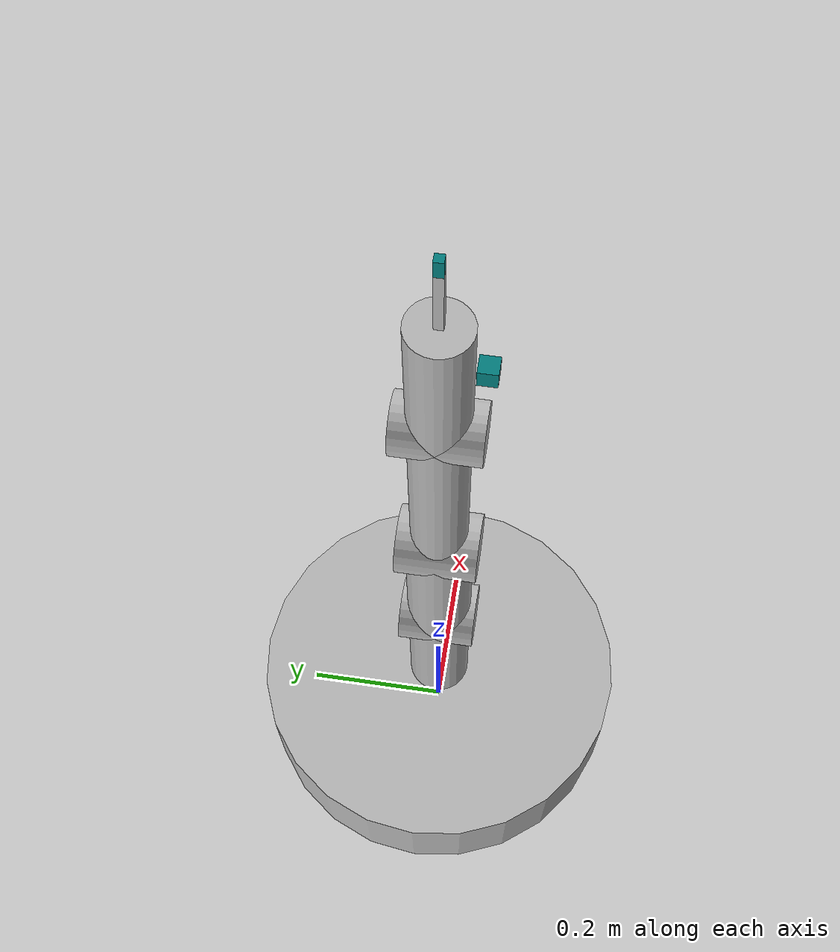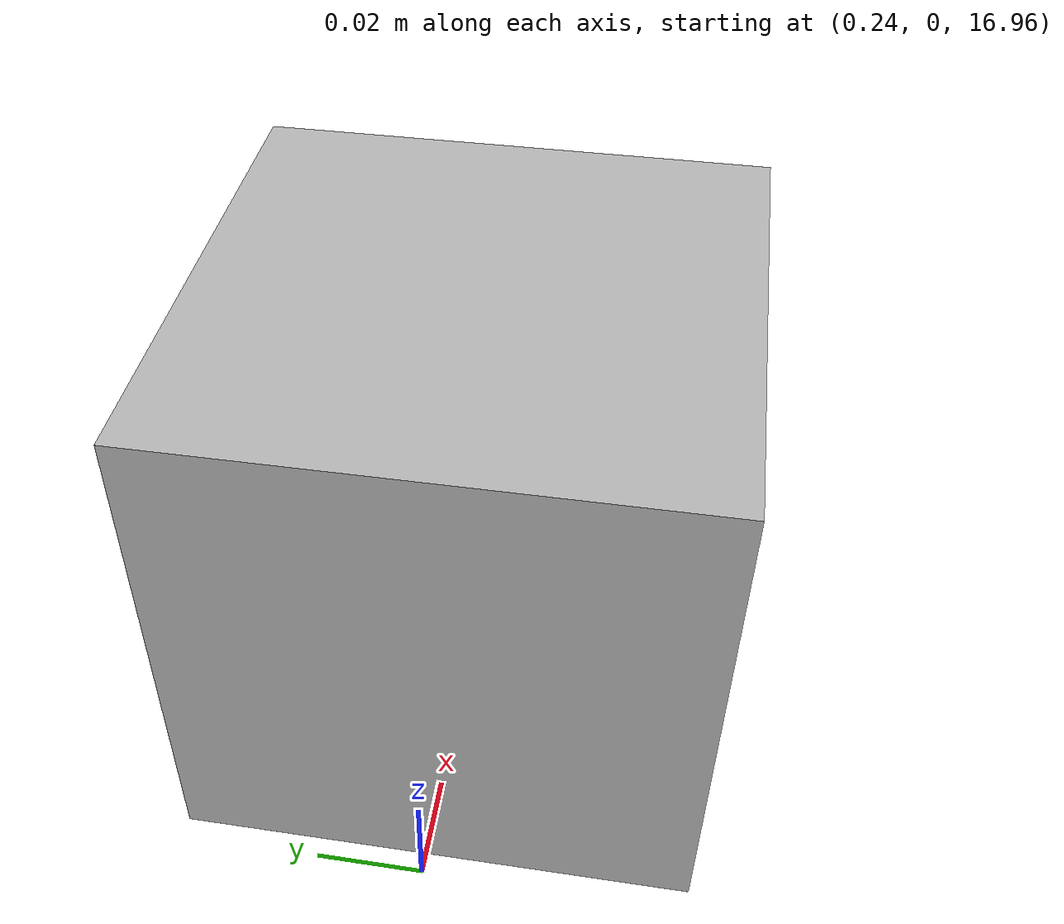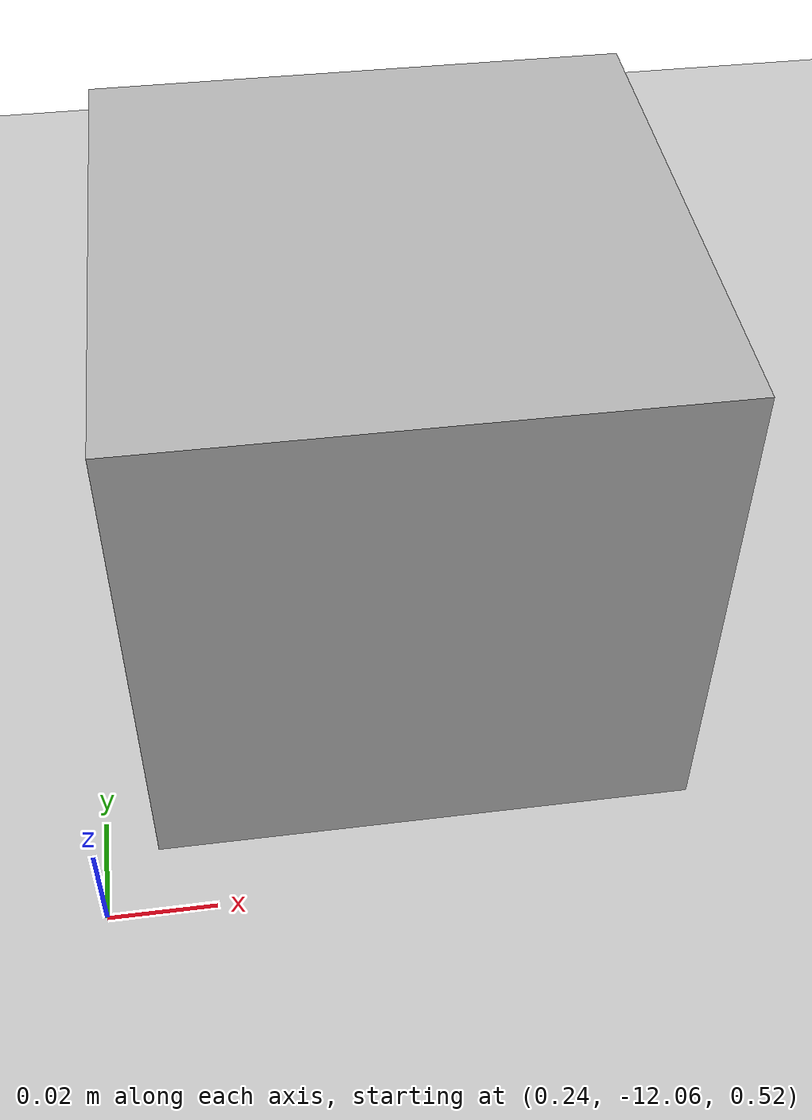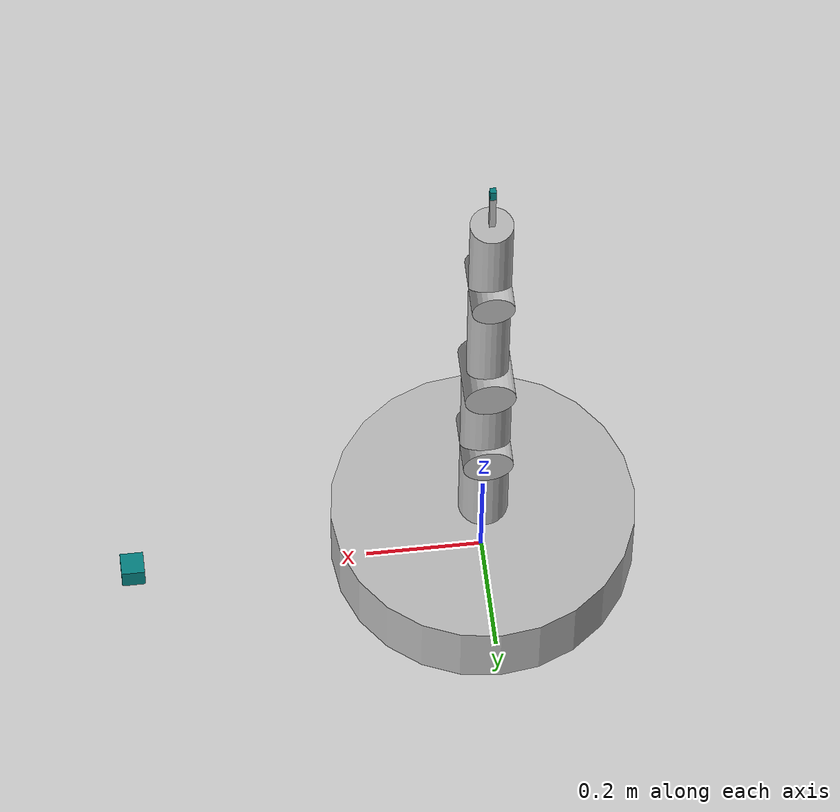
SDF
<?xml version="1.0" ?>
<!-- belongs in directory /home/nvidia/jetson-reinforcement/build/aarch64-->
<sdf version="1.4">
  <world name="edo_world">
    <physics type="ode">
      <real_time_update_rate>0.000</real_time_update_rate>
      <max_step_size>0.001</max_step_size>
      <gravity>0 0 0</gravity><!--Gravity set to 0 to allow object to stay at proper height-->
    </physics><!--COMMENT OUT FOR HP LINUX PC-->

	  <light name='sun' type='directional'>
		  <cast_shadows>1</cast_shadows>
		  <pose>0 0 10 0 -0 0</pose>
		  <diffuse>0.8 0.8 0.8 1</diffuse>
		  <specular>0.2 0.2 0.2 1</specular>
		  <attenuation>
			  <range>1000</range>
			  <constant>0.9</constant>
			  <linear>0.01</linear>
			  <quadratic>0.001</quadratic>
		  </attenuation>
		  <direction>-0.5 0.1 -0.9</direction>
	  </light>

    <scene>
      <background>155 155 155 1</background>
      <shadows>false</shadows>
    </scene>

	  <!-- Ground Plane -->
	  <include>
		  <uri>model://ground_plane</uri>
	  </include>

	  <!-- EDO/GRIPPER -->
	  <model name="edo_sim">
      <plugin name="EdoPlugin" filename="libgazeboEdoPlugin.so" />
      <self_collide>false</self_collide>

		  <link name="base_link">
		    <pose>0 0 .0675 0 0 0</pose>
		    <inertial>
			    <mass>5.7</mass>
		    </inertial>
		    <collision name="collision">
			    <geometry>
				    <cylinder>
					    <radius>0.2613</radius>
              <length>0.135</length>
				    </cylinder>
			    </geometry>
		    </collision>
		    <visual name="visual">
			    <geometry>
				    <cylinder>
					    <radius>0.2613</radius>
              <length>0.135</length>
				    </cylinder>
			    </geometry>
		    </visual>
		  </link>

		  <joint name="base_link" type="revolute">
			  <child>base_link</child>
			  <parent>world</parent>
		  </joint>

		  <link name="joint_1">
		    <pose>0 0 0.236 0 0 0</pose>
        <inertial>
			<mass>0.88</mass>
		    </inertial>
		    <collision name="collision">
			    <geometry>
				<cylinder>
					<radius>.0425</radius>
					<length>.202</length>
				    </cylinder>
			    </geometry>
		</collision>
		    <visual name="visual">
			<geometry>
				<cylinder>
					<radius>.0425</radius>
					<length>.202</length>
				</cylinder>
			</geometry>
		</visual>
		  </link>

		  <joint name="joint_1" type="revolute"><!--Changed from "fixed" to "revolute"-->
			  <child>joint_1</child>
			  <parent>base_link</parent>
			  <axis>
				  <limit>
					  <lower>-2</lower>
					  <upper>2</upper>
				  </limit>
				  <xyz>0 0 1</xyz>
			  </axis>
		  </joint>

		  <link name="joint_2">
		    <pose>0 0 0.337 1.5708 0 0</pose>
        <inertial>
			    <mass>0.88</mass>
		    </inertial>
		    <collision name="collision">
			    <geometry>
				    <cylinder>
					    <radius>.0425</radius>
					    <length>.1</length>
				    </cylinder>
			    </geometry>
		    </collision>
		    <visual name="visual">
			    <geometry>
				    <cylinder>
					    <radius>.0425</radius>
					    <length>.1</length>
				    </cylinder>
			    </geometry>
		    </visual>
		  </link>

		  <joint name="joint_2" type="revolute">
			  <child>joint_2</child>
			  <parent>joint_1</parent>
			  <axis>
				  <limit>
					  <lower>-2</lower>
					  <upper>2</upper>
				  </limit>
				  <xyz>0 1 0</xyz>
			  </axis>
		  </joint>

      <link name="link_1">
		    <pose>0 0 0.44225 0 0 0</pose>
		    <collision name="collision">
			    <geometry>
				    <cylinder>
					    <radius>.0425</radius>
					    <length>.2105</length>
				    </cylinder>
			    </geometry>
		    </collision>
		    <visual name="visual">
			    <geometry>
				    <cylinder>
					    <radius>.0425</radius>
					    <length>.2105</length>
				    </cylinder>
			    </geometry>
		    </visual>
		  </link>

		  <joint name="link_1" type="fixed">
			  <child>link_1</child>
			  <parent>joint_2</parent>
		  </joint>

		  <link name="joint_3">
		    <pose>0 0 0.5475 1.5708 0 0</pose>
        <inertial>
			    <mass>0.88</mass>
		    </inertial>
		    <collision name="collision">
			    <geometry>
				    <cylinder>
					    <radius>.0425</radius>
					    <length>.1</length>
				    </cylinder>
			    </geometry>
		    </collision>
		    <visual name="visual">
			    <geometry>
				    <cylinder>
					    <radius>.0425</radius>
					    <length>.1</length>
				    </cylinder>
			    </geometry>
		    </visual>
		  </link>

		  <joint name="joint_3" type="revolute">
			  <child>joint_3</child>
			  <parent>link_1</parent>
			  <axis>
				  <limit>
					  <lower>-2</lower>
					  <upper>2</upper>
				  </limit>
				  <xyz>0 1 0</xyz>
			  </axis>
		  </joint>

		  <link name="joint_4">
		    <pose>0 0 0.6815 0 0 0</pose>
        <inertial>
			    <mass>0.42</mass>
		    </inertial>
		    <collision name="collision">
			    <geometry>
				    <cylinder>
					    <radius>.035</radius>
					    <length>.268</length>
				    </cylinder>
			    </geometry>
		    </collision>
		    <visual name="visual">
			    <geometry>
				    <cylinder>
					    <radius>.035</radius>
					    <length>.268</length>
				    </cylinder>
			    </geometry>
		    </visual>
		  </link>

		  <joint name="joint_4" type="revolute"> <!--Changed from "fixed" to "revolute"-->
			  <child>joint_4</child>
			  <parent>joint_3</parent>
			  <axis>
				  <limit>
					  <lower>-2</lower>
					  <upper>2</upper>
				  </limit>
				  <xyz>0 0 1</xyz>
			  </axis>
		  </joint>

      <link name="joint_5">
		    <pose>0 0 0.8155 1.5708 0 0</pose>
        <inertial>
			    <mass>0.42</mass>
		    </inertial>
		    <collision name="collision">
			    <geometry>
				    <cylinder>
					    <radius>.035</radius>
					    <length>.1</length>
				    </cylinder>
			    </geometry>
		    </collision>
		    <visual name="visual">
			    <geometry>
				    <cylinder>
					    <radius>.035</radius>
					    <length>.1</length>
				    </cylinder>
			    </geometry>
		    </visual>
		  </link>

		  <joint name="joint_5" type="revolute">
			  <child>joint_5</child>
			  <parent>joint_4</parent>
			  <axis>
				  <limit>
					  <lower>-2</lower>
					  <upper>2</upper>
				  </limit>
				  <xyz>0 1 0</xyz>
			  </axis>
		  </joint>

      <link name="joint_6">
		    <pose>0 0 0.90275 0 0 0</pose>
        <inertial>
			    <mass>0.42</mass>
		    </inertial>
		    <collision name="collision">
			    <geometry>
				    <cylinder>
					    <radius>.035</radius>
					    <length>.1745</length>
				    </cylinder>
			    </geometry>
		    </collision>
		    <visual name="visual">
			    <geometry>
				    <cylinder>
					    <radius>.035</radius>
					    <length>.1745</length>
				    </cylinder>
			    </geometry>
		    </visual>
		  </link>

		  <joint name="joint_6" type="revolute"> <!--Changed from "fixed" to "revolute"-->
			  <child>joint_6</child>
			  <parent>joint_5</parent>
			  <axis>
				  <limit>
					  <lower>-2</lower>
					  <upper>2</upper>
				  </limit>
				  <xyz>0 0 1</xyz>
			  </axis>
		  </joint>
<!--OLD GRIPPER MIDDLE-->
<!--OLD GRIPPER MIDDLE-->
<!--NEW GRIPPER MIDDLE-->
      <link name="gripper_prong">
        <pose>0 0 1.03 0 0 0</pose>
			  <collision name="prong_collision">
			    <geometry>
				    <box>
              <size>.01 .01 .075</size>
				    </box>
			    </geometry>
			  </collision>
			  <visual name="prong_vision">
				  <geometry>
					  <box>
              <size>.01 .01 .075</size>
					  </box>
				  </geometry>
			  </visual>
		  </link>

      <joint name="gripper_prong" type="fixed">
        <parent>joint_6</parent>
        <child>gripper_prong</child>
      </joint>

      <link name="gripper_middle">
        <pose>0 0 1.077 0 0 0</pose>
			  <collision name="middle_collision">
			    <geometry>
				    <box>
				      <size>.01 .01 .02</size>
				    </box>
			    </geometry>
			  </collision>
			  <visual name="middle_vision">
				  <geometry>
					  <box>
				      <size>.01 .01 .02</size>
					  </box>
				  </geometry>
			    <material>
				    <ambient>0.5 0.5 0.5 1</ambient>
				    <diffuse>0.01 0.5 0.5 1</diffuse>
				    <specular>0.01 0.01 0.01 1</specular>
				    <emissive>0.1 0.1 0 0</emissive>
				    <shader type='vertex'>
					    <normal_map>__default__</normal_map>
				    </shader>
			    </material><!--COMMENTED OUT**GREEN**COMMENTED OUT-->
			  </visual>
		  </link>

      <joint name="gripper_middle" type="fixed">
        <parent>gripper_prong</parent>
        <child>gripper_middle</child>
      </joint>
<!--NEW GRIPPER MIDDLE-->

	  </model>

	  <!-- CAMERA -->
	  <model name="camera">
		  <link name="link">
		  <gravity>false</gravity>
      <pose>0.3 -12 0.575 0 0 1.5708</pose> <!--***profile pose***-->
		  <inertial>
			  <mass>0.1</mass>
      </inertial>
      <!-- VISUAL ELIMINATED by Jack Shelata
           camera box shows up in double image-->
		  <visual name="visual">
			  <geometry>
				  <box>
					  <size>0.1 0.1 0.1</size>
				  </box>
			  </geometry>
      </visual>
		  <sensor name="camera" type="camera">
			  <camera>
          <horizontal_fov>0.1</horizontal_fov> <!--***profile fov*** -->
				  <image>
					  <width>128</width> <!--Adel mohamed changed from 64 to 128 -->
					  <height>128</height> <!--Adel mohamed changed from 64 to 128 -->
				  </image>
				  <clip>
					  <near>0.1</near>
					  <far>100</far>
          </clip>
			  </camera>
			  <always_on>1</always_on>
			  <update_rate>20</update_rate>
			  <visualize>false</visualize>
		  </sensor>
		  </link>
	  </model>

	  <!-- Adel second CAMERA for the other 2d -->
	  <model name="cameraSecond">
		  <link name="link">
		  <gravity>false</gravity>
      <pose>0.3 0 17 0 1.5708 1.5708</pose> <!--***profile pose***-->
		  <inertial>
			  <mass>0.1</mass>
      </inertial>
      <!-- VISUAL ELIMINATED by Jack Shelata
           camera box shows up in double image-->
		  <visual name="visual">
			  <geometry>
				  <box>
					  <size>0.1 0.1 0.1</size>
				  </box>
			  </geometry>
      </visual>
		  <sensor name="camera" type="camera">
			  <camera>
          <horizontal_fov>0.1</horizontal_fov> <!--***profile fov*** -->
				  <image>
					  <width>128</width> <!--Adel mohamed changed from 64 to 128 -->
					  <height>128</height><!--Adel mohamed changed from 64 to 128 -->
				  </image>
				  <clip>
					  <near>0.1</near>
					  <far>100</far>
          </clip>
			  </camera>
			  <always_on>1</always_on>
			  <update_rate>20</update_rate>
			  <visualize>false</visualize>
		  </sensor>
		  </link>
	  </model>

    <model name="multicamera">
      <pose>0 0 0 0 0 0</pose>
      <static>true</static>
      <link name="link">
        <pose>0 0 0 0 0 0</pose>
        <sensor type="multicamera" name="multicamera">
			    <camera name="left">
            <!-- changed from 128 to 64 by Adel Mohamed don't change without contacting me-->
            <pose>0.3 0 17 0 1.5708 1.5708</pose>
            <horizontal_fov>0.1</horizontal_fov>
            <!-- changed from 0.17 to 0.1 by Adel Mohamed don't change without contacting me-->
				    <image>
					    <width>128</width><!-- changed from 64 to 128 by Adel Mohamed don't change without contacting me-->
					    <height>128</height>
				    </image>
				    <clip>
					    <near>0.1</near>
					    <far>100</far>
				    </clip>
			    </camera>
          <always_on>1</always_on>
			    <update_rate>20</update_rate> <!-- FROM 10 TO 20-->
          <camera name="right">
             <pose>0.3 -12 0.575 0 0 1.5708</pose>
              <horizontal_fov>0.1</horizontal_fov>
              <!-- changed from 0.14 to 0.1 by Adel Mohamed don't change without contacting me-->
				      <image>
					      <width>128</width><!-- changed from 64 to 128 by Adel Mohamed don't change without contacting me-->
					      <height>128</height>
				      </image>
				      <clip>
					      <near>0.1</near>
					      <far>100</far>
				      </clip>
			    </camera>
          <always_on>1</always_on>
			    <update_rate>20</update_rate> <!-- FROM 10 TO 20-->
			    <visualize>false</visualize>
          <plugin name="MultiCamera" filename="libgazebo_ros_multicamera.so"/>
        </sensor>
      </link>
    </model>

	  <!-- BOX/COLLISION -->

	  <!-- BALL/COLLISION -->

	  <!-- TUBE/COLLISION -->
	  <model name="tube">
      <pose>0.605 0 0.027500 0 0 0</pose>
      <link name="link">
		    <collision name="tube_collision">
			    <geometry>
			      <box>
					    <size> .02 .02 .04</size>
			      </box>
			    </geometry>
		    </collision>
		    <visual name="visual">
			    <geometry>
				    <box>
					    <size>.04 .04 .04</size>
            </box>
			    </geometry>
			    <material>
				    <ambient>0.5 0.5 0.5 1</ambient>
				    <diffuse>0.01 0.5 0.5 1</diffuse>
				    <specular>0.01 0.01 0.01 1</specular>
				    <emissive>0.1 0.1 0 0</emissive>
				    <shader type='vertex'>
					    <normal_map>__default__</normal_map>
				    </shader>
			    </material>
		    </visual>
		    <sensor name='my_contact' type='contact'>
			    <contact>
				    <collision>tube_collision</collision>
			    </contact>
		    </sensor>
		  </link>

      <plugin name="PropPlugin" filename="libgazeboPropPlugin.so" />
	  </model>

  </world>
</sdf>
